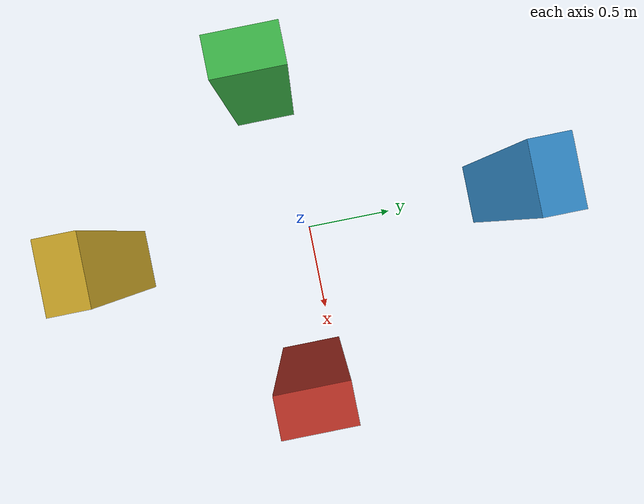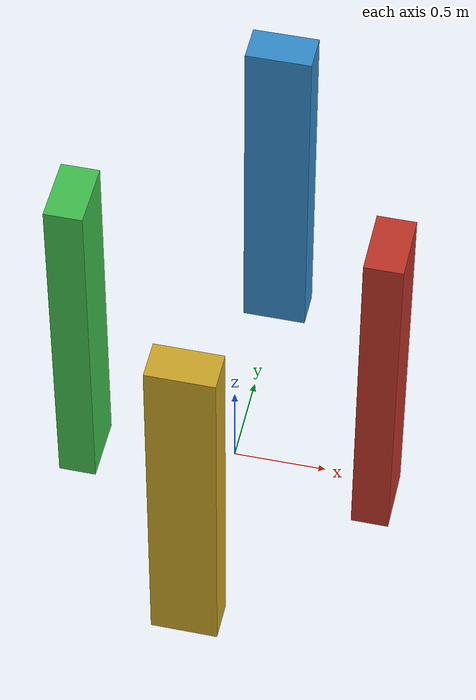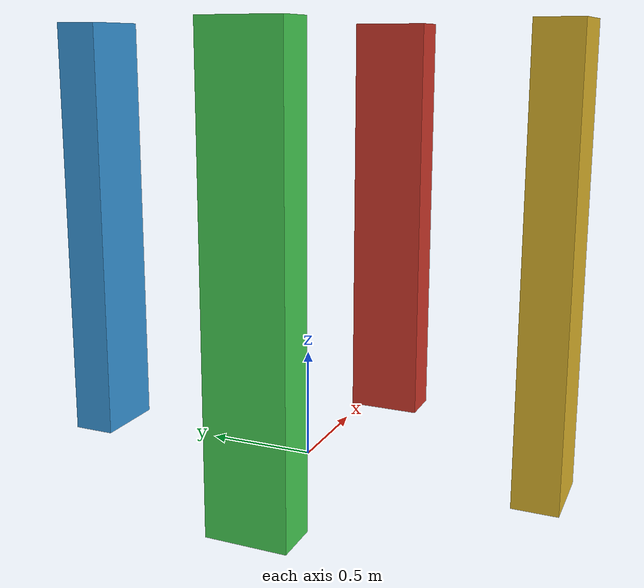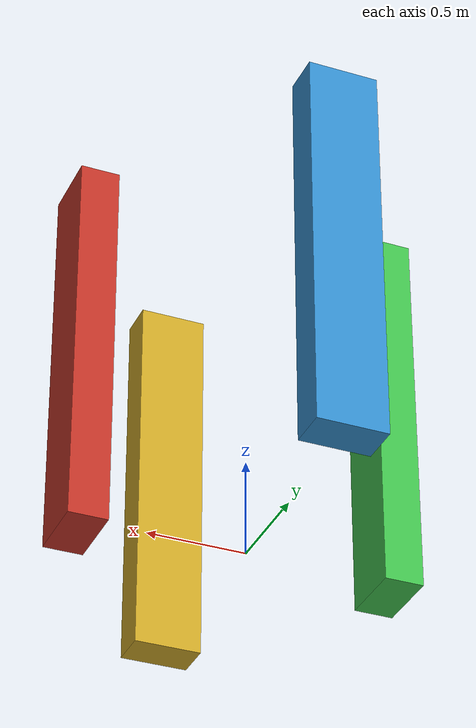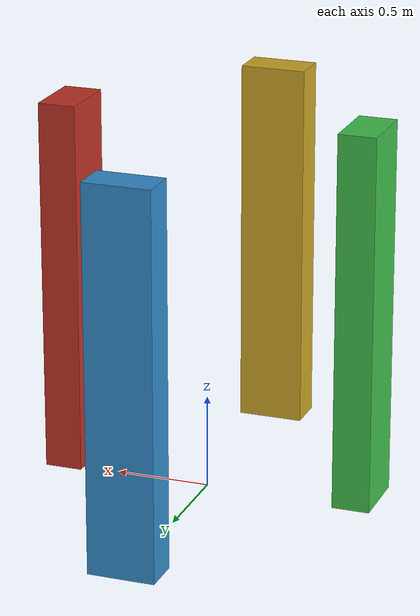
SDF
<?xml version="1.0" ?>
<sdf version="1.6">
  <model name="planar_obstacles">
    <static>true</static>

    <link name="front_box">
      <pose>0.80 -0.13 1.00 0 0 0</pose>
      <collision name="collision">
        <geometry><box><size>0.20 0.35 2.00</size></box></geometry>
      </collision>
      <visual name="visual">
        <geometry><box><size>0.20 0.35 2.00</size></box></geometry>
        <material><ambient>0.75 0.20 0.15 1</ambient></material>
      </visual>
    </link>

    <link name="left_box">
      <pose>0.00 1.10 1.00 0 0 0</pose>
      <collision name="collision">
        <geometry><box><size>0.35 0.20 2.00</size></box></geometry>
      </collision>
      <visual name="visual">
        <geometry><box><size>0.35 0.20 2.00</size></box></geometry>
        <material><ambient>0.20 0.55 0.80 1</ambient></material>
      </visual>
    </link>

    <link name="rear_box">
      <pose>-0.80 -0.13 1.00 0 0 0</pose>
      <collision name="collision">
        <geometry><box><size>0.20 0.35 2.00</size></box></geometry>
      </collision>
      <visual name="visual">
        <geometry><box><size>0.20 0.35 2.00</size></box></geometry>
        <material><ambient>0.25 0.75 0.30 1</ambient></material>
      </visual>
    </link>

    <link name="right_box">
      <pose>0.00 -1.10 1.00 0 0 0</pose>
      <collision name="collision">
        <geometry><box><size>0.35 0.20 2.00</size></box></geometry>
      </collision>
      <visual name="visual">
        <geometry><box><size>0.35 0.20 2.00</size></box></geometry>
        <material><ambient>0.80 0.65 0.15 1</ambient></material>
      </visual>
    </link>
  </model>
</sdf>
